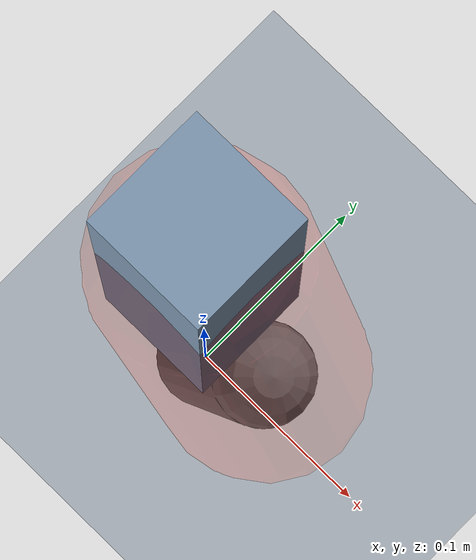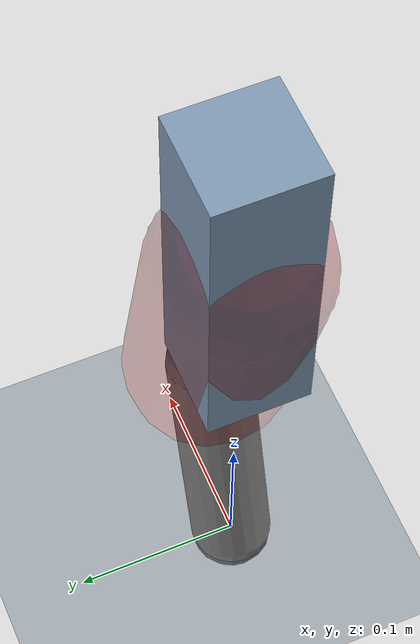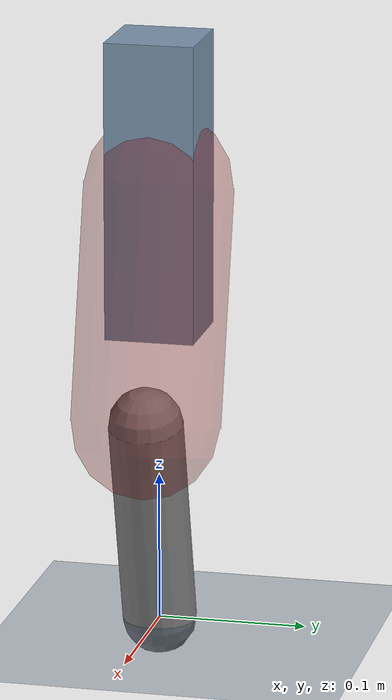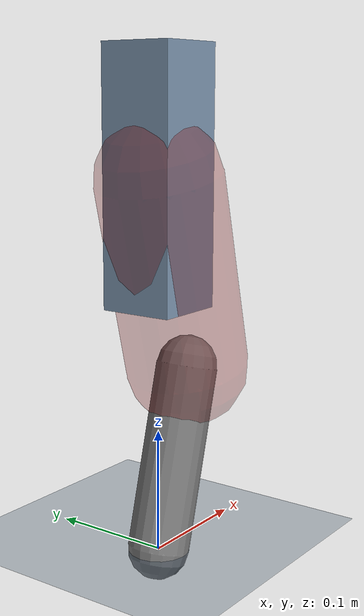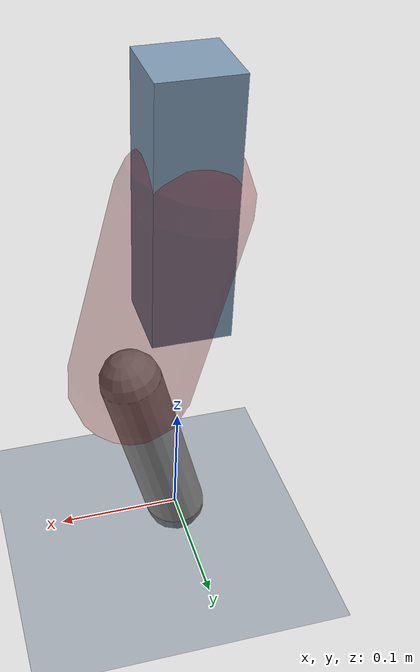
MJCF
<mujoco model="Hopper2D">
	<compiler inertiafromgeom="true" angle="radian" />
	<option timestep="0.001" integrator="implicit" cone="elliptic" solver="Newton" tolerance="1e-10" />

	<default>
		<geom contype="1" conaffinity="1" condim="3" friction="2 0.005 0.0001" solref="0.005 1" />
		<joint limited="true" damping="0.1" />
	</default>

	<asset>
		<texture name="skybox" type="skybox" builtin="gradient" rgb1=".4 .6 .8" rgb2="0 0 0" width="800" height="800" />
		<texture name="grid" type="2d" builtin="checker" rgb1=".1 .2 .3" rgb2=".2 .3 .4" width="300" height="300" mark="edge" markrgb=".2 .3 .4" />
		<material name="ground" texture="grid" texrepeat="1 1" texuniform="true" reflectance="0.1" />
		<material name="leg" rgba="0.5 0.6 0.7 1" />
	</asset>

	<worldbody>

		<geom name="floor" type="plane" size="5 5 0.25" material="ground" />

		<light directional="false" diffuse="0.8 0.8 0.8" specular="0.3 0.3 0.3" pos="0 0 2" dir="0 0 -1" />
		<light mode="targetbodycom" target="base" directional="false" diffuse="0.8 0.8 0.8" specular="0.3 0.3 0.3" pos="0 0 2" dir="0 0 -1" />

		<camera name="fixed" pos="0 -2 1" xyaxes="1 0 0 0 0 1" />
		<camera name="tracking" mode="trackcom" pos="0 -3 1" />

		<body name="root" pos="0 0 0.3000942510955621">
			<joint name="slide_x" type="slide" axis="1 0 0" range="-100 100" />
			<joint name="slide_z" type="slide" axis="0 0 1" range="0 10" />

			<body name="base" pos="0 0 0">
				<geom name="torso" type="box" size="0.03 0.03 0.1" mass="2.661" material="leg" />

				<body name="link1" pos="0 0 0" euler="0 1.3218574151012488 0">
					<joint type="hinge" axis="0 -1 0" pos="0 0 0" name="hinge1" limited="true" range="-3.14 3.14" stiffness="0" damping="0.1" />
					<geom name="thigh" type="capsule" fromto="0 0 0 0.1584856852046445 0 0" size="0.05" rgba="0.5 0 0 0.3" mass="0.6286656444911468" />

					<body name="link2" pos="0.1584856852046445 0 0" euler="0 0.5094263456536738 0">
						<joint type="hinge" axis="0 -1 0" pos="0 0 0" name="hinge2" limited="true" range="-3.14 3.14" stiffness="0" damping="0.1" />
						<geom name="shank" type="capsule" fromto="0 0 0 0.15160856589091762 0 0" size="0.025" mass="0.3591477093018258" />

					</body>
				</body>
			</body>
		</body>
	</worldbody>

	<actuator>
		<motor name="torque1" joint="hinge1" ctrlrange="-128.15560591316873 128.15560591316873" ctrllimited="true" gear="1" />
		<motor name="torque2" joint="hinge2" ctrlrange="-33.69479126719378 33.69479126719378" ctrllimited="true" gear="1" />
	</actuator>
</mujoco>
